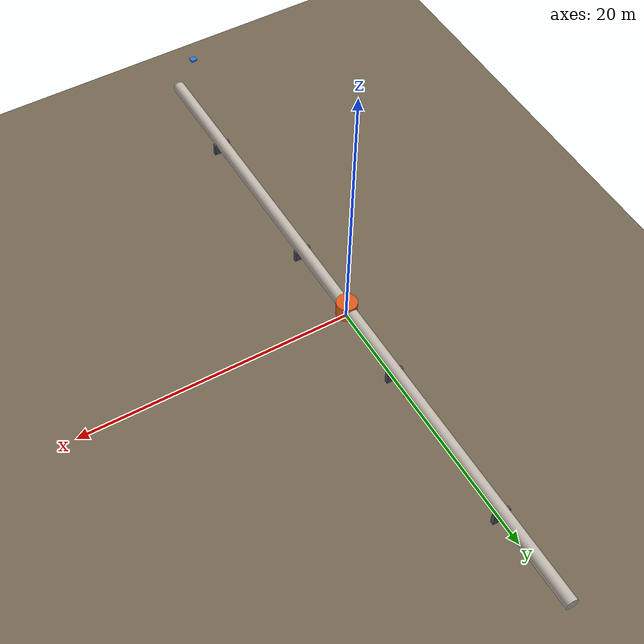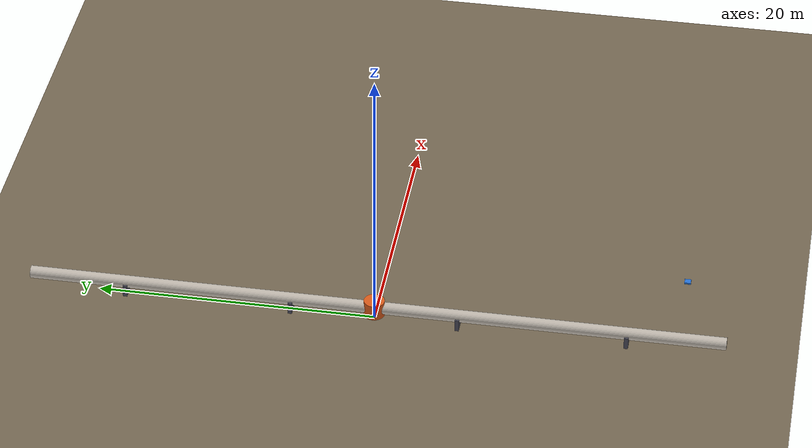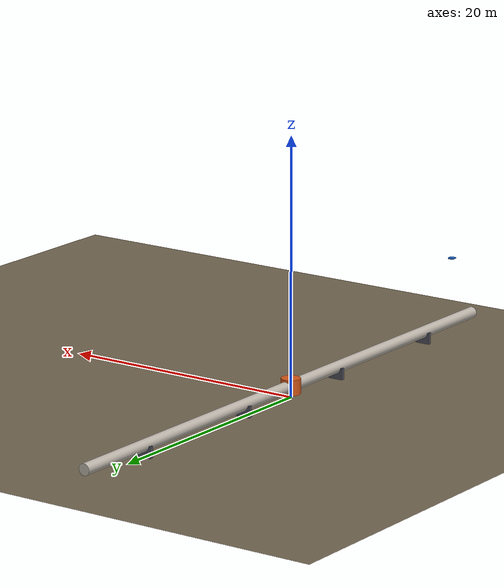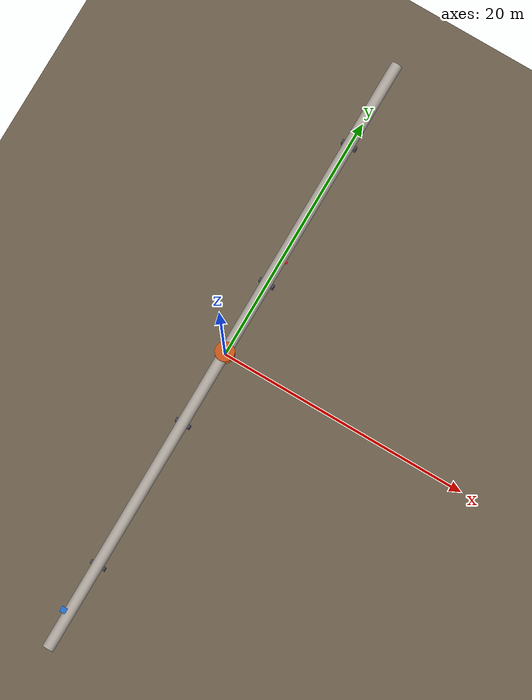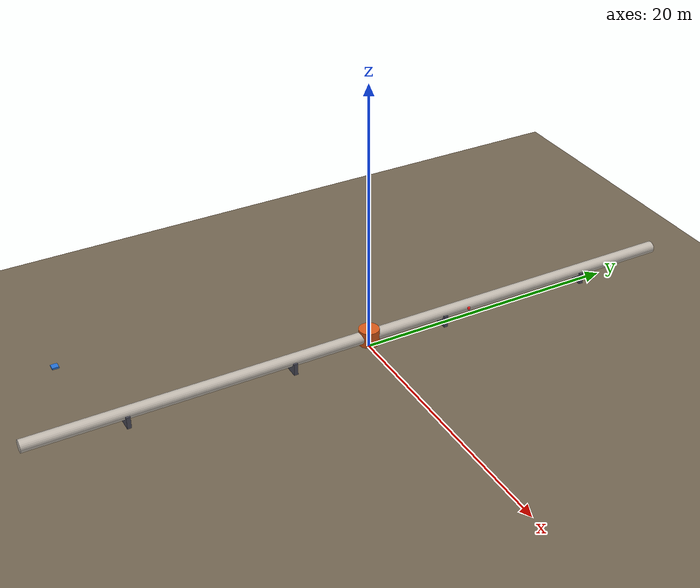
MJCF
<mujoco model="pipeline_surveillance_drone">
  <compiler angle="radian" coordinate="local"/>
  <option gravity="0 0 -9.81" timestep="0.004" solver="Newton" iterations="40"/>

  <default>
    <geom condim="3" friction="1.0 0.01 0.005"/>
    <motor ctrllimited="true" ctrlrange="0 8.0"/>
  </default>

  <worldbody>
    <!-- Desert / Industrial Ground Plane -->
    <geom name="ground" type="plane" size="60 30 0.1" rgba="0.45 0.40 0.32 1"/>
    <light directional="true" pos="0 0 35" dir="0 0 -1" castshadow="false"/>

    <!-- ABOVE-GROUND INDUSTRIAL OIL & GAS PIPELINE CORRIDOR                 -->
    <!-- Main Pipeline Section 1 -->
    <geom name="pipeline_main_1" type="cylinder" size="0.45 25" pos="0 0 0.9" zaxis="0 1 0" rgba="0.75 0.72 0.68 1" mass="4500.0"/>
    <!-- Support Trestle Structures -->
    <geom name="trestle_1" type="box" size="0.6 0.15 0.45" pos="0 -18 0.45" rgba="0.3 0.3 0.35 1"/>
    <geom name="trestle_2" type="box" size="0.6 0.15 0.45" pos="0 -6 0.45" rgba="0.3 0.3 0.35 1"/>
    <geom name="trestle_3" type="box" size="0.6 0.15 0.45" pos="0 6 0.45" rgba="0.3 0.3 0.35 1"/>
    <geom name="trestle_4" type="box" size="0.6 0.15 0.45" pos="0 18 0.45" rgba="0.3 0.3 0.35 1"/>

    <!-- Valve Station Junction -->
    <geom name="valve_junction" type="cylinder" size="0.75 0.6" pos="0 0 0.9" zaxis="0 0 1" rgba="0.85 0.35 0.1 1"/>
    <!-- Simulated Pipeline Leak / Defect Site -->
    <site name="pipeline_defect_site" pos="0.46 8.0 0.9" size="0.12 0.12 0.02" rgba="1 0.1 0.1 0.9"/>

    <!-- AUTONOMOUS SURVEILLANCE QUADROTOR UAV                                -->
    <body name="uav_quad" pos="0 -22 6.0">
      <freejoint name="uav_root"/>
      <geom name="quad_chassis" type="box" size="0.22 0.22 0.06" rgba="0.15 0.45 0.85 1" mass="1.85"/>
      <site name="quad_imu" pos="0 0 0"/>

      <!-- Downward Optical & Thermal Inspection Camera -->
      <camera name="pipeline_cam" pos="0 0 -0.07" euler="3.1415 0 0" fovy="65"/>
      <site name="thermal_sensor_site" pos="0 0 -0.07" size="0.03" rgba="1 0 0 1"/>

      <!-- 4 Rotors for Quadrotor Dynamics -->
      <site name="rotor0" pos="0.25 0.25 0.03"/>
      <site name="rotor1" pos="-0.25 0.25 0.03"/>
      <site name="rotor2" pos="-0.25 -0.25 0.03"/>
      <site name="rotor3" pos="0.25 -0.25 0.03"/>
    </body>
  </worldbody>

  <actuator>
    <motor name="motor_rotor0" site="rotor0" gear="0 0 1 0 0 -0.04"/>
    <motor name="motor_rotor1" site="rotor1" gear="0 0 1 0 0 0.04"/>
    <motor name="motor_rotor2" site="rotor2" gear="0 0 1 0 0 -0.04"/>
    <motor name="motor_rotor3" site="rotor3" gear="0 0 1 0 0 0.04"/>
  </actuator>
</mujoco>
